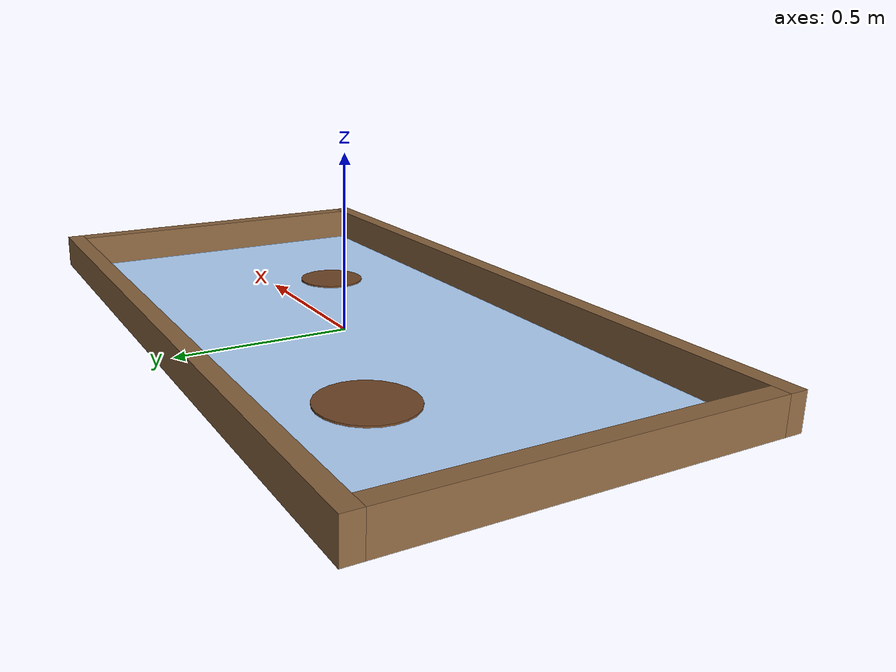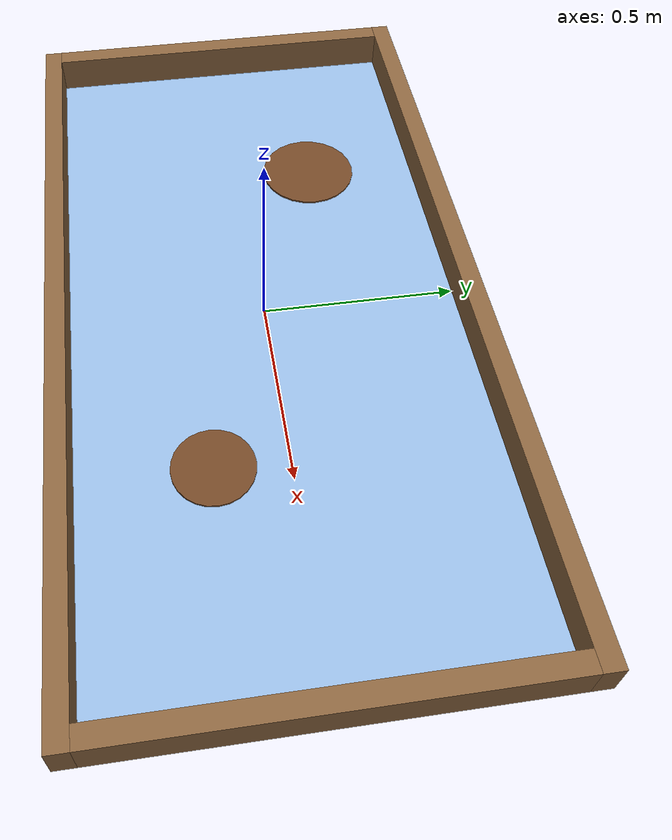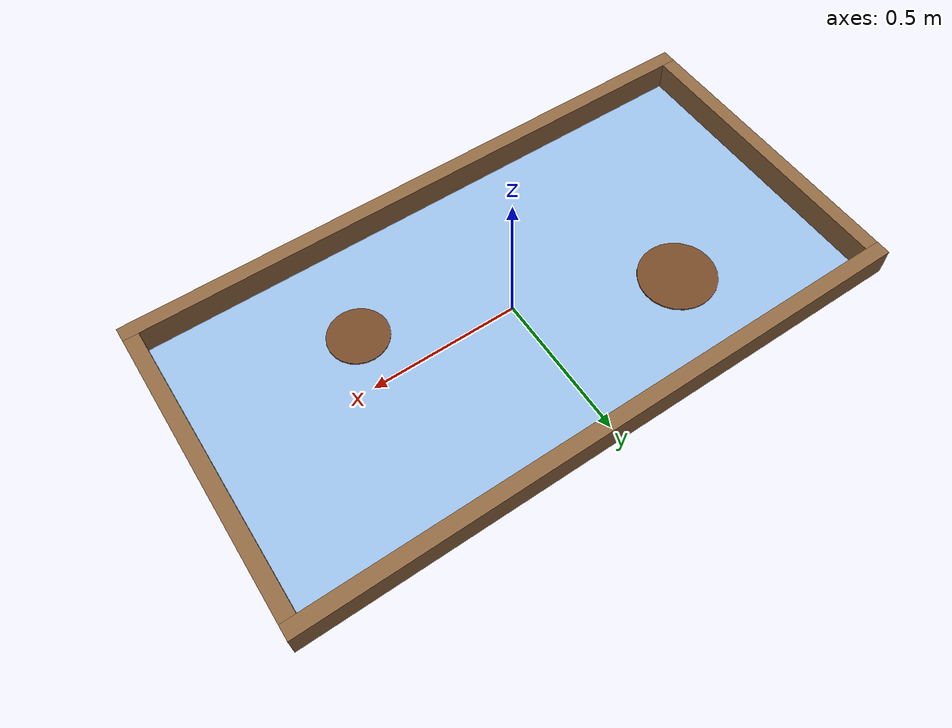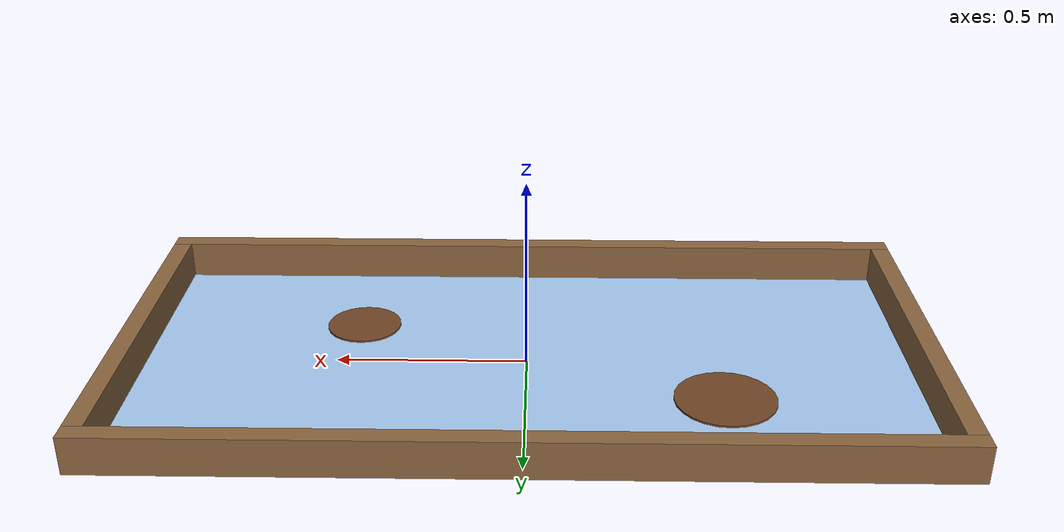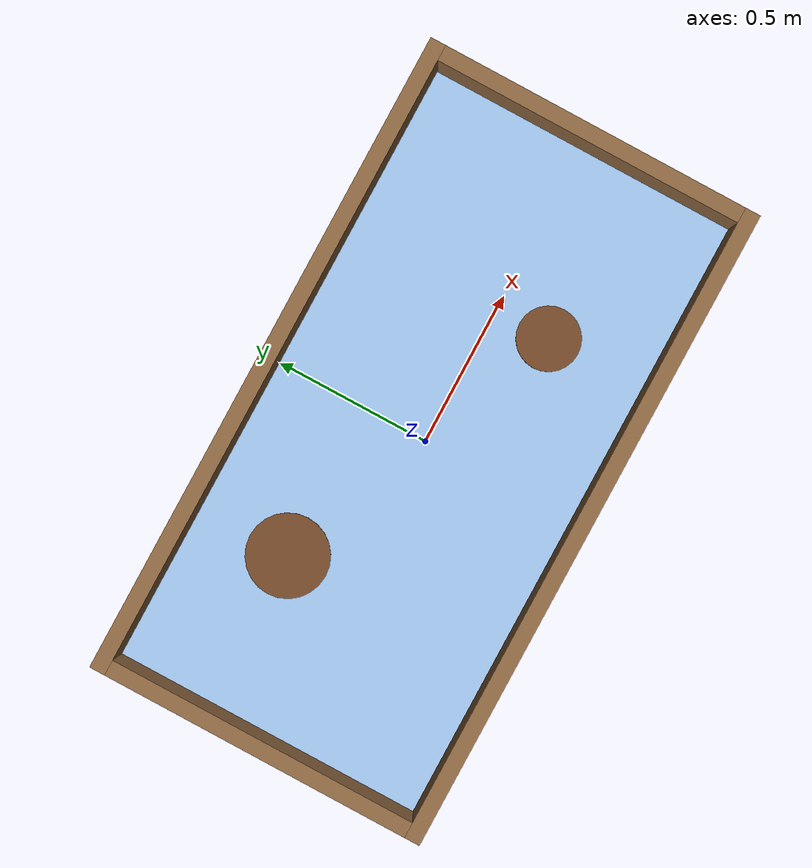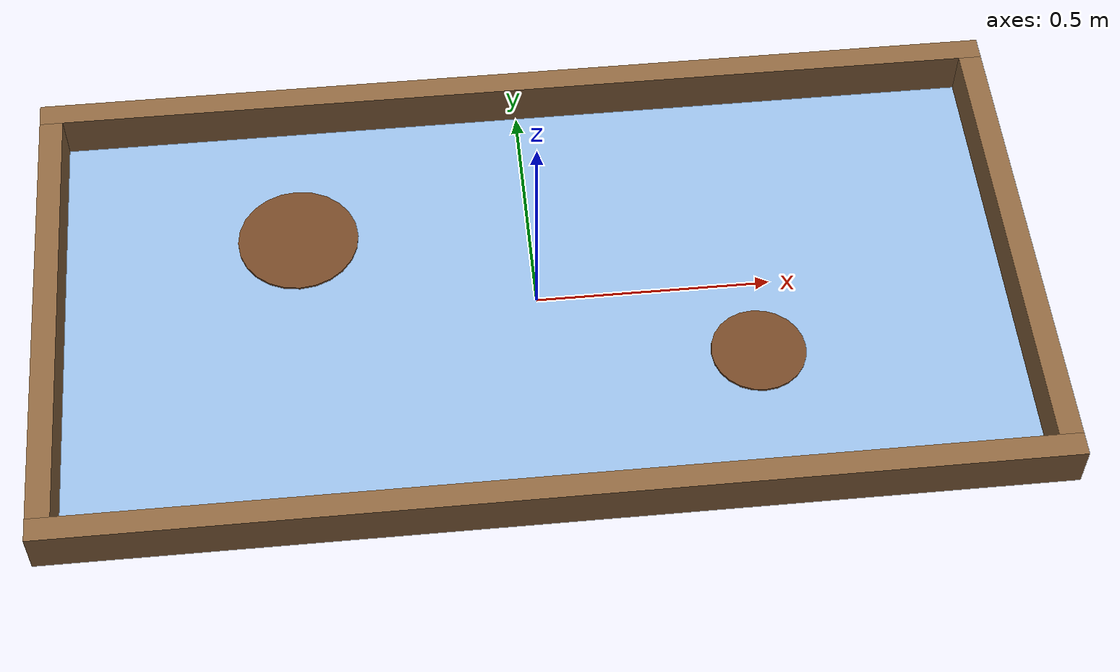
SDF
<?xml version="1.0" ?>
<sdf version="1.9">
  <world name="glass_small">

    <gravity>0 0 0</gravity>

    <physics name="1ms" type="ignored">
      <max_step_size>0.001</max_step_size>
      <real_time_factor>1.0</real_time_factor>
    </physics>

    <plugin filename="ignition-gazebo-physics-system"
            name="ignition::gazebo::systems::Physics"/>
    <plugin filename="ignition-gazebo-user-commands-system"
            name="ignition::gazebo::systems::UserCommands"/>
    <plugin filename="ignition-gazebo-scene-broadcaster-system"
            name="ignition::gazebo::systems::SceneBroadcaster"/>
    <plugin filename="ignition-gazebo-sensors-system"
            name="ignition::gazebo::systems::Sensors">
      <render_engine>ogre2</render_engine>
    </plugin>

    <scene>
      <ambient>0.5 0.5 0.6 1</ambient>
      <background>0.85 0.90 0.95 1</background>
      <grid>false</grid>
    </scene>

    <light type="directional" name="sun">
      <cast_shadows>true</cast_shadows>
      <pose>0 0 5 0 0 0</pose>
      <diffuse>0.9 0.9 0.9 1</diffuse>
      <specular>0.2 0.2 0.2 1</specular>
      <direction>-0.3 0.3 -1.0</direction>
    </light>

    <!-- ============================================================
         Glass surface (2m x 1m, slightly translucent blue)
         ============================================================ -->
    <model name="glass_surface">
      <static>true</static>
      <pose>0 0 0 0 0 0</pose>
      <link name="surface_link">
        <visual name="surface_visual">
          <geometry>
            <box><size>2.0 1.0 0.01</size></box>
          </geometry>
          <material>
            <ambient>0.15 0.35 0.55 0.45</ambient>
            <diffuse>0.25 0.55 0.85 0.45</diffuse>
            <specular>0.6 0.7 0.9 1</specular>
            <emissive>0.05 0.10 0.15 1</emissive>
          </material>
        </visual>
        <collision name="surface_collision">
          <geometry>
            <box><size>2.0 1.0 0.01</size></box>
          </geometry>
        </collision>
      </link>
    </model>

    <model name="frame_bottom">
      <static>true</static>
      <pose>0 -0.525 0.055 0 0 0</pose>
      <link name="link">
        <visual name="v">
          <geometry><box><size>2.10 0.05 0.10</size></box></geometry>
          <material>
            <ambient>0.35 0.25 0.18 1</ambient>
            <diffuse>0.55 0.40 0.25 1</diffuse>
          </material>
        </visual>
        <collision name="c">
          <geometry><box><size>2.10 0.05 0.10</size></box></geometry>
        </collision>
      </link>
    </model>

    <model name="frame_top">
      <static>true</static>
      <pose>0 0.525 0.055 0 0 0</pose>
      <link name="link">
        <visual name="v">
          <geometry><box><size>2.10 0.05 0.10</size></box></geometry>
          <material>
            <ambient>0.35 0.25 0.18 1</ambient>
            <diffuse>0.55 0.40 0.25 1</diffuse>
          </material>
        </visual>
        <collision name="c">
          <geometry><box><size>2.10 0.05 0.10</size></box></geometry>
        </collision>
      </link>
    </model>

    <model name="frame_left">
      <static>true</static>
      <pose>-1.025 0 0.055 0 0 0</pose>
      <link name="link">
        <visual name="v">
          <geometry><box><size>0.05 1.00 0.10</size></box></geometry>
          <material>
            <ambient>0.35 0.25 0.18 1</ambient>
            <diffuse>0.55 0.40 0.25 1</diffuse>
          </material>
        </visual>
        <collision name="c">
          <geometry><box><size>0.05 1.00 0.10</size></box></geometry>
        </collision>
      </link>
    </model>

    <model name="frame_right">
      <static>true</static>
      <pose>1.025 0 0.055 0 0 0</pose>
      <link name="link">
        <visual name="v">
          <geometry><box><size>0.05 1.00 0.10</size></box></geometry>
          <material>
            <ambient>0.35 0.25 0.18 1</ambient>
            <diffuse>0.55 0.40 0.25 1</diffuse>
          </material>
        </visual>
        <collision name="c">
          <geometry><box><size>0.05 1.00 0.10</size></box></geometry>
        </collision>
      </link>
    </model>

    <model name="dirt_01">
      <static>true</static>
      <pose>-0.50 0.20 0.011 0 0 0</pose>
      <link name="link">
        <visual name="v">
          <geometry><cylinder><radius>0.13</radius><length>0.005</length></cylinder></geometry>
          <material>
            <ambient>0.30 0.18 0.10 1</ambient>
            <diffuse>0.45 0.28 0.15 1</diffuse>
          </material>
        </visual>
      </link>
    </model>

    <model name="dirt_02">
      <static>true</static>
      <pose>0.45 -0.18 0.011 0 0 0</pose>
      <link name="link">
        <visual name="v">
          <geometry><cylinder><radius>0.10</radius><length>0.005</length></cylinder></geometry>
          <material>
            <ambient>0.30 0.18 0.10 1</ambient>
            <diffuse>0.45 0.28 0.15 1</diffuse>
          </material>
        </visual>
      </link>
    </model>

  </world>
</sdf>
